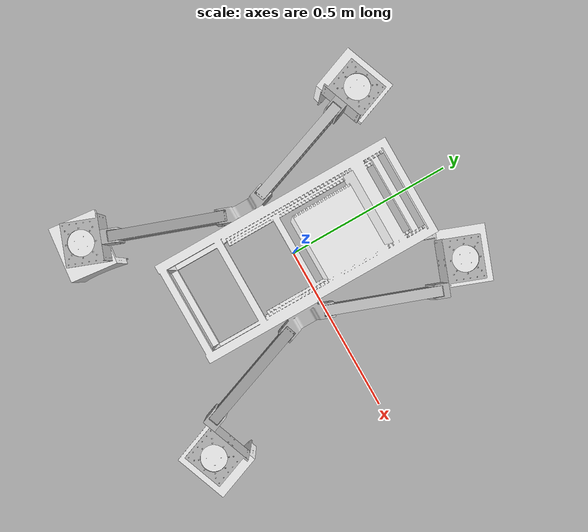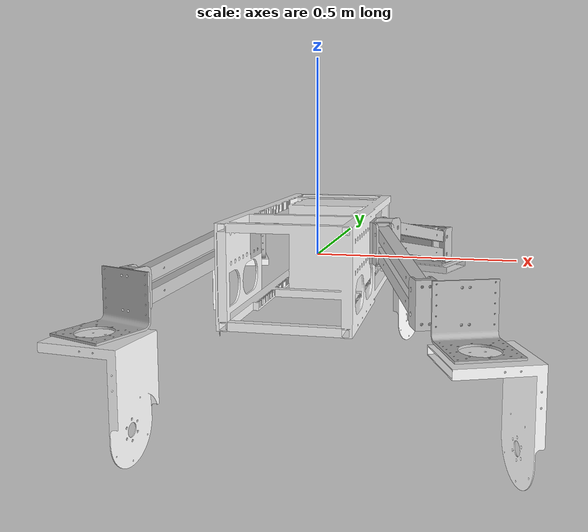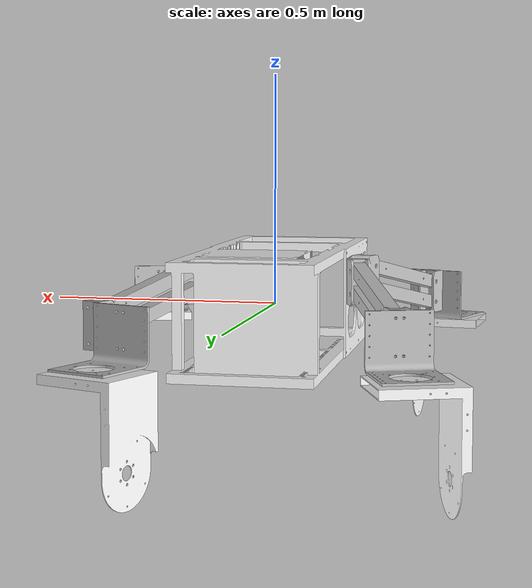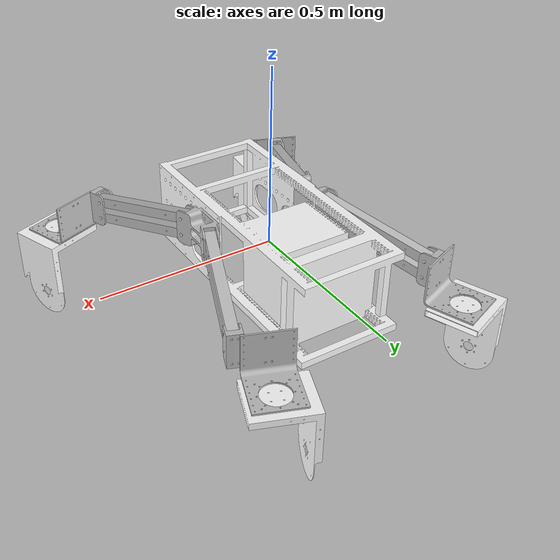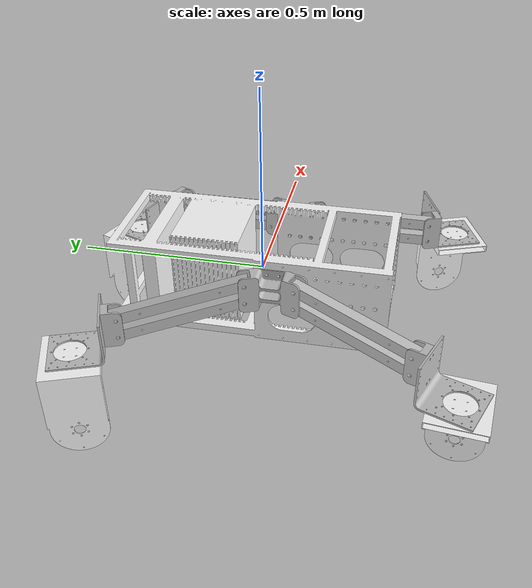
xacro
<?xml version="1.0" encoding="utf-8"?>
<robot xmlns:xacro="http://www.ros.org/wiki/xacro" name="proxima_preview">

  <xacro:property name="scale" value="0.001 0.001 0.001"/>
  <xacro:property name="frame_rpy" value="${pi/2} 0 0" />
  <xacro:property name="frame_mesh_xyz" value="-0.12 0 -0.105"/>
  <xacro:property name="hub_rpy_left" value="${pi/2} 0 ${pi/2}"/>
  <xacro:property name="hub_rpy_right" value="${pi/2} 0 ${-pi/2}"/>
  <xacro:property name="hub_xyz_left" value="0.15 -0.06 0.05"/>
  <xacro:property name="hub_xyz_right" value="-0.15 -0.06 0.05"/>
  <xacro:property name="current_rod_tilt" value="0.2"/>

  <xacro:property name="rod_fru_xyz" value="0.068 0.025 0.038"/>
  <xacro:property name="rod_fru_rpy" value="${current_rod_tilt} 1.21 0"/>
  <xacro:property name="rod_frl_xyz" value="0.068 -0.025 0.038"/>
  <xacro:property name="rod_frl_rpy" value="${current_rod_tilt} 1.21 0"/>
  <xacro:property name="rod_rru_xyz" value="-0.068 0.025 0.038"/>
  <xacro:property name="rod_rru_rpy" value="${current_rod_tilt} -1.21 0"/>
  <xacro:property name="rod_rrl_xyz" value="-0.068 -0.025 0.038"/>
  <xacro:property name="rod_rrl_rpy" value="${current_rod_tilt} -1.21 0"/>

  <xacro:property name="rod_flu_xyz" value="0.068 0.025 0.038"/>
  <xacro:property name="rod_flu_rpy" value="${current_rod_tilt} 1.21 0"/>
  <xacro:property name="rod_fll_xyz" value="0.068 -0.025 0.038"/>
  <xacro:property name="rod_fll_rpy" value="${current_rod_tilt} 1.21 0"/>
  <xacro:property name="rod_rlu_xyz" value="-0.068 0.025 0.038"/>
  <xacro:property name="rod_rlu_rpy" value="${current_rod_tilt} -1.21 0"/>
  <xacro:property name="rod_rll_xyz" value="-0.068 -0.025 0.038"/>
  <xacro:property name="rod_rll_rpy" value="${current_rod_tilt} -1.21 0"/>

  <xacro:property name="rod_hub_joint_lower" value="-0.5236"/>
  <xacro:property name="rod_hub_joint_upper" value="0.5236"/>
  <xacro:property name="rod_hub_joint_effort" value="50.0"/>
  <xacro:property name="rod_hub_joint_velocity" value="3.0"/>
  <xacro:property name="rod_mesh_origin_xyz" value="0 0 -0.015"/>

  <xacro:property name="clamp_joint_lower" value="-${pi}"/>
  <xacro:property name="clamp_joint_upper" value="${pi}"/>
  <xacro:property name="clamp_joint_effort" value="20.0"/>
  <xacro:property name="clamp_joint_velocity" value="2.0"/>
  <xacro:property name="clamp_mesh_origin_xyz" value="0 -0.075 -0.030"/>
  <xacro:property name="clamp_fr_xyz" value="0 0 0.32"/>

  <material name="gray_frame"><color rgba="0.75 0.75 0.75 1.0"/></material>
  <material name="white_frame"><color rgba="1.0 1.0 1.0 1.0"/></material>

  <xacro:macro name="rod_assembly" params="prefix parent_link xyz rpy dir">
    <link name="rod_${prefix}_link">
      <visual>
        <origin xyz="${rod_mesh_origin_xyz}" rpy="0 0 0"/>
        <geometry><mesh filename="package://proxima_description/meshes/proxima/profile_30x30.stl" scale="${scale}"/></geometry>
        <material name="gray_frame"/>
      </visual>
    </link>
    <joint name="${parent_link}_to_rod_${prefix}_joint" type="revolute">
      <parent link="${parent_link}"/><child link="rod_${prefix}_link"/>
      <origin xyz="${xyz}" rpy="${rpy}"/><axis xyz="${dir} 0 0"/>
      <limit lower="${rod_hub_joint_lower}" upper="${rod_hub_joint_upper}" effort="${rod_hub_joint_effort}" velocity="${rod_hub_joint_velocity}"/>
    </joint>
  </xacro:macro>

  <xacro:macro name="clamp_assembly" params="prefix parent_rod mesh_rpy">
    <link name="clamp_${prefix}_link">
      <visual>
        <origin xyz="${clamp_mesh_origin_xyz}" rpy="${mesh_rpy}"/>
        <geometry><mesh filename="package://proxima_description/meshes/proxima/clamp_6.stl" scale="${scale}"/></geometry>
        <material name="gray_frame"/>
      </visual>
    </link>
    <joint name="${parent_rod}_to_clamp_${prefix}_joint" type="revolute">
      <parent link="${parent_rod}"/><child link="clamp_${prefix}_link"/>
      <origin xyz="${clamp_fr_xyz}" rpy="0.2 ${pi} 0"/> <axis xyz="1 0 0"/>
      <limit lower="${clamp_joint_lower}" upper="${clamp_joint_upper}" effort="${clamp_joint_effort}" velocity="${clamp_joint_velocity}"/>
    </joint>
  </xacro:macro>

  <xacro:macro name="swerve_mount_assembly" params="prefix parent_link xyz rod_rot">
    <link name="swerve_mount_${prefix}_link">
      <visual>
        <origin xyz="0 0 0" rpy="-${pi/2} 0 0"/>
        <geometry>
          <mesh filename="package://proxima_description/meshes/proxima/swerve_mount.stl" scale="${scale}"/>
        </geometry>
        <material name="gray_frame"/>
      </visual>
      <collision>
        <origin xyz="0 0 0" rpy="-${pi/2} 0 0"/>
        <geometry>
          <mesh filename="package://proxima_description/meshes/proxima/swerve_mount.stl" scale="${scale}"/>
        </geometry>
      </collision>
    </link>

    <joint name="${parent_link}_to_swerve_mount_${prefix}_joint" type="fixed">
      <parent link="${parent_link}"/>
      <child link="swerve_mount_${prefix}_link"/>
      <origin xyz="${xyz}" rpy="${-rod_rot} 0 0"/>
    </joint>

    <link name="swerve_steer_${prefix}_link"/>
    <joint name="mount_to_steer_${prefix}_joint" type="fixed">
      <parent link="swerve_mount_${prefix}_link"/>
      <child link="swerve_steer_${prefix}_link"/>
      <origin xyz="0.04 -0.0125 0" rpy="0 0 0"/>
    </joint>
  </xacro:macro>
<xacro:macro name="fork_assembly" params="prefix parent_link xyz rpy">
    <link name="fork_${prefix}_link">
      <visual>
        <origin xyz="-0.08 0 0" rpy="0 ${pi/2} 0"/>
        <geometry>
          <mesh filename="package://proxima_description/meshes/proxima/fork_2.stl" scale="${scale}"/>
        </geometry>
        <material name="white_frame"/>
      </visual>
      <collision>
        <origin xyz="0 0 0" rpy="0 0 0"/>
        <geometry>
          <mesh filename="package://proxima_description/meshes/proxima/fork_2.stl" scale="${scale}"/>
        </geometry>
      </collision>
    </link>

    <joint name="swerve_to_fork_${prefix}_joint" type="continuous">
      <parent link="${parent_link}"/>
      <child link="fork_${prefix}_link"/>
      <origin xyz="${xyz}" rpy="${rpy}"/>
      <axis xyz="0 0 1"/>
    </joint>
  </xacro:macro>

  <xacro:macro name="wheel_assembly" params="prefix parent_link xyz">
    <link name="wheel_${prefix}_link">
      <visual>
        <origin xyz="0 0 0" rpy="0 ${pi/2} 0"/>
        <geometry>
          <mesh filename="package://proxima_description/meshes/proxima/wheel.stl" scale="${scale}"/>
        </geometry>
        <material name="gray_frame">
          <color rgba="0.2 0.2 0.2 1.0"/>
        </material>
      </visual>
    </link>

    <joint name="${parent_link}_to_wheel_${prefix}_joint" type="continuous">
      <parent link="${parent_link}"/>
      <child link="wheel_${prefix}_link"/>
      <origin xyz="${xyz}" rpy="0 0 0"/>
      <axis xyz="0 1 0"/>
    </joint>
  </xacro:macro>

  <link name="main_frame_link">
    <visual>
      <origin xyz="${frame_mesh_xyz}" rpy="${frame_rpy}"/>
      <geometry><mesh filename="package://proxima_description/meshes/proxima/Frame_assemble.stl" scale="${scale}"/></geometry>
      <material name="white_frame"/>
    </visual>
  </link>

  <link name="hub_link_left">
    <visual><origin xyz="0 0 0" rpy="0 0 0"/><geometry><mesh filename="package://proxima_description/meshes/proxima/hub.stl" scale="${scale}"/></geometry><material name="gray_frame"/></visual>
  </link>
  <joint name="main_frame_to_hub_left_joint" type="fixed"><parent link="main_frame_link"/><child link="hub_link_left"/><origin xyz="${hub_xyz_left}" rpy="${hub_rpy_left}"/></joint>

  <link name="hub_link_right">
    <visual><origin xyz="0 0 0" rpy="0 0 0"/><geometry><mesh filename="package://proxima_description/meshes/proxima/hub.stl" scale="${scale}"/></geometry><material name="gray_frame"/></visual>
  </link>
  <joint name="main_frame_to_hub_right_joint" type="fixed"><parent link="main_frame_link"/><child link="hub_link_right"/><origin xyz="${hub_xyz_right}" rpy="${hub_rpy_right}"/></joint>

  <xacro:rod_assembly prefix="fru" parent_link="hub_link_right" xyz="${rod_fru_xyz}" rpy="${rod_fru_rpy}" dir="1"/>
  <xacro:rod_assembly prefix="frl" parent_link="hub_link_right" xyz="${rod_frl_xyz}" rpy="${rod_frl_rpy}" dir="1"/>
  <xacro:rod_assembly prefix="rru" parent_link="hub_link_right" xyz="${rod_rru_xyz}" rpy="${rod_rru_rpy}" dir="-1"/>
  <xacro:rod_assembly prefix="rrl" parent_link="hub_link_right" xyz="${rod_rrl_xyz}" rpy="${rod_rrl_rpy}" dir="-1"/>
  <xacro:rod_assembly prefix="flu" parent_link="hub_link_left" xyz="${rod_flu_xyz}" rpy="${rod_flu_rpy}" dir="1"/>
  <xacro:rod_assembly prefix="fll" parent_link="hub_link_left" xyz="${rod_fll_xyz}" rpy="${rod_fll_rpy}" dir="1"/>
  <xacro:rod_assembly prefix="rlu" parent_link="hub_link_left" xyz="${rod_rlu_xyz}" rpy="${rod_rlu_rpy}" dir="-1"/>
  <xacro:rod_assembly prefix="rll" parent_link="hub_link_left" xyz="${rod_rll_xyz}" rpy="${rod_rll_rpy}" dir="-1"/>

  <xacro:clamp_assembly prefix="fr" parent_rod="rod_fru_link" mesh_rpy="0 0 0"/>
  <xacro:swerve_mount_assembly prefix="fr" parent_link="rod_fru_link" xyz="-0.04 -0.07 0.46" rod_rot="${current_rod_tilt}"/>
  <xacro:fork_assembly prefix="fr" parent_link="swerve_steer_fr_link" xyz="0 0 0" rpy="0 0.25 0"/>
  <xacro:wheel_assembly prefix="fr" parent_link="fork_fr_link" xyz="0 -0.17 0"/>

  <xacro:clamp_assembly prefix="rl" parent_rod="rod_flu_link" mesh_rpy="0 0 0"/>
  <xacro:swerve_mount_assembly prefix="rl" parent_link="rod_flu_link" xyz="0.04 -0.07 0.46" rod_rot="${current_rod_tilt}"/>
  <xacro:fork_assembly prefix="rl" parent_link="swerve_steer_rl_link" xyz="0 0 0" rpy="0 0. 0"/>
  <xacro:wheel_assembly prefix="rl" parent_link="fork_rl_link" xyz="0 -0.17 0"/>

  <xacro:clamp_assembly prefix="rr" parent_rod="rod_rru_link" mesh_rpy="0 0 0"/>
  <xacro:swerve_mount_assembly prefix="rr" parent_link="rod_rru_link" xyz="-0.04 -0.07 0.46" rod_rot="${current_rod_tilt}"/>
  <xacro:fork_assembly prefix="rr" parent_link="swerve_steer_rr_link" xyz="0 0 0" rpy="0 0 0"/>
  <xacro:wheel_assembly prefix="rr" parent_link="fork_rr_link" xyz="0 -0.17 0"/>

  <xacro:clamp_assembly prefix="fl" parent_rod="rod_rlu_link" mesh_rpy="0 0 0"/>
  <xacro:swerve_mount_assembly prefix="fl" parent_link="rod_rlu_link" xyz="0.04 -0.07 0.46" rod_rot="${current_rod_tilt}"/>
  <xacro:fork_assembly prefix="fl" parent_link="swerve_steer_fl_link" xyz="0 0 0" rpy="0 0 0"/>
  <xacro:wheel_assembly prefix="fl" parent_link="fork_fl_link" xyz="0 -0.17 0"/>
</robot>
